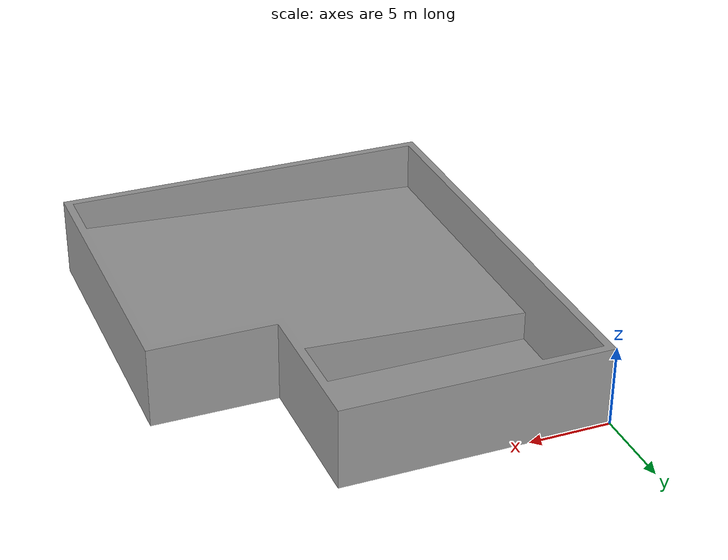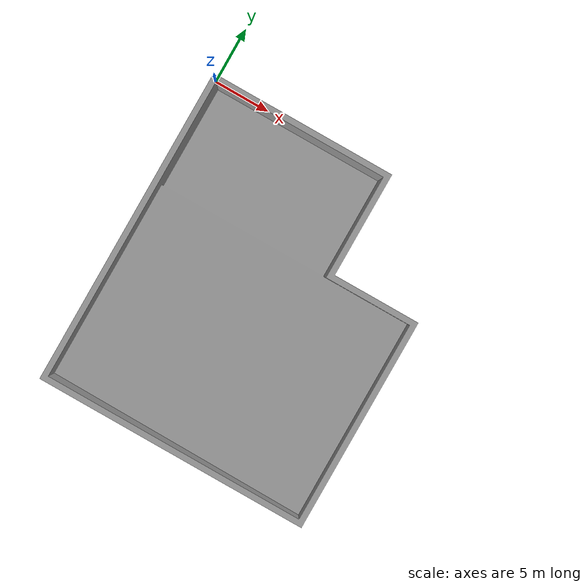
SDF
<?xml version='1.0'?>
<sdf version='1.5'>

    <model name='gibb_pool'>
        <pose>0 0 0 1.575 0 0</pose>
        <self_collide>0</self_collide>
        <static>1</static>

        <link name='pool'>
            <pose>0 0 0 0 0 0</pose>
            <visual name='pool_visual'>
                <geometry>
                    <mesh>
                        <uri>file://gibb/gibb.stl</uri>
                        <scale>0.001 0.001 0.001</scale>
                    </mesh>
                </geometry>
                <material>
                    <script>
                        <uri>file://media/materials/scripts/gazebo.material</uri>
                        <name>Gazebo/Grey</name>
                    </script>
                </material>
            </visual>
            <collision name='pool_collision'>
                <geometry>
                    <mesh>
                        <uri>file://gibb/gibb.stl</uri>
                        <scale>0.001 0.001 0.001</scale>
                    </mesh>
                </geometry>
            </collision>
        </link>
    </model>
</sdf>
